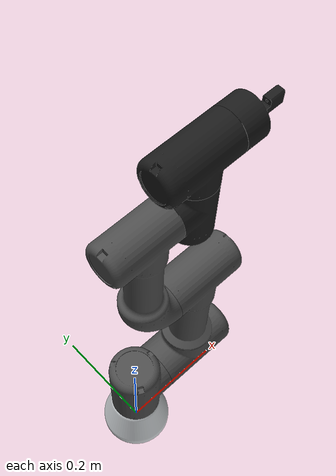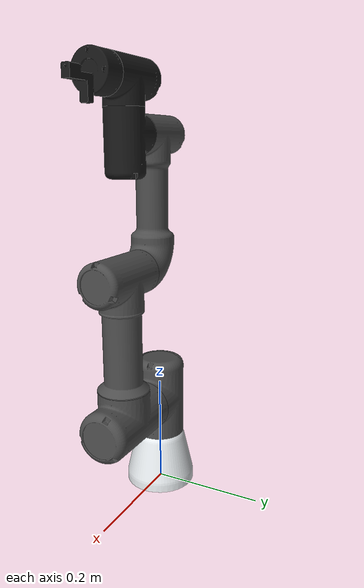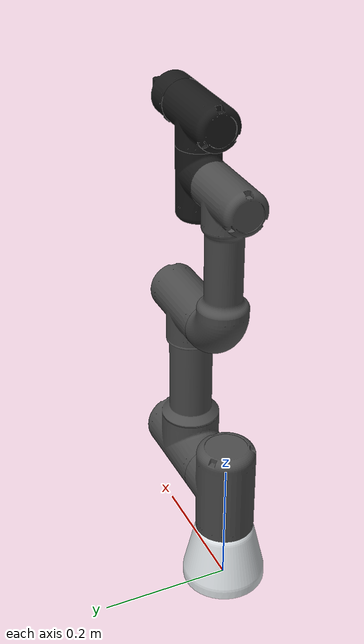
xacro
<?xml version="1.0"?>
<robot xmlns:xacro="http://www.ros.org/wiki/xacro" name="car_spraying_robot">
    <xacro:arg name="initial_positions_file" default="initial_positions.yaml" />

    <!-- Import car_spraying_robot urdf file -->
    <xacro:include filename="$(find car_spraying_robot)/urdf/UR3_Assembly_URDF.urdf" />

    <!-- Import control_xacro -->
    <xacro:include filename="car_spraying_robot.ros2_control.xacro" />

    <xacro:car_spraying_robot_ros2_control name="FakeSystem" initial_positions_file="$(arg initial_positions_file)"/>

</robot>

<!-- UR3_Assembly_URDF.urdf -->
<robot
  name="car_spraying_robot">
  <link name="world"/>

  <joint name="world_joint" type="fixed">
    <parent link="world"/>
    <child link="base_link"/>
    <origin xyz="0 0 0" rpy="0 0 0"/>
  </joint>

  <link
    name="base_link">
    <inertial>
      <origin
        xyz="0 -4.44089209850063E-16 0.0475762493981301"
        rpy="0 0 0" />
      <mass
        value="2.65145043916468" />
      <inertia
        ixx="0.00437179269564763"
        ixy="-3.85185988877447E-34"
        ixz="-5.87786191511011E-23"
        iyy="0.00437179269564763"
        iyz="3.85148667524642E-19"
        izz="0.00438480872973141" />
    </inertial>
    <visual>
      <origin
        xyz="0 0 0"
        rpy="0 0 0" />
      <geometry>
        <mesh
          filename="package://car_spraying_robot/meshes/base_link.stl" />
      </geometry>
      <material
        name="">
        <color
          rgba="0.898039215686275 0.917647058823529 0.929411764705882 1" />
      </material>
    </visual>
    <collision>
      <origin
        xyz="0 0 0"
        rpy="0 0 0" />
      <geometry>
        <mesh
          filename="package://car_spraying_robot/meshes/base_link.stl" />
      </geometry>
    </collision>
  </link>
  <link
    name="link_1">
    <inertial>
      <origin
        xyz="0.00511358621544344 -4.48936976482628E-09 0.063179880887965"
        rpy="0 0 0" />
      <mass
        value="0.805998552978852" />
      <inertia
        ixx="0.00132065479666303"
        ixy="4.40619620491933E-10"
        ixz="-1.7219218437348E-05"
        iyy="0.00142111571223347"
        iyz="1.29400431944431E-10"
        izz="0.000966507308305541" />
    </inertial>
    <visual>
      <origin
        xyz="0 0 0"
        rpy="0 0 0" />
      <geometry>
        <mesh
          filename="package://car_spraying_robot/meshes/link_1.stl" />
      </geometry>
      <material
        name="">
        <color
          rgba="0.298039215686275 0.298039215686275 0.298039215686275 1" />
      </material>
    </visual>
    <collision>
      <origin
        xyz="0 0 0"
        rpy="0 0 0" />
      <geometry>
        <mesh
          filename="package://car_spraying_robot/meshes/link_1.stl" />
      </geometry>
    </collision>
  </link>
  <joint
    name="joint_0"
    type="revolute">
    <origin
      xyz="0 0 0.1058"
      rpy="0 0 0" />
    <parent
      link="base_link" />
    <child
      link="link_1" />
    <axis
      xyz="0 0 1" />
    <limit
      lower="-3.14"
      upper="3.14"
      effort="35.0"
      velocity="1.5" />
  </joint>
  <link
    name="link_2">
    <inertial>
      <origin
        xyz="4.25462332032112E-10 0.112619000509759 -0.0693119808542058"
        rpy="0 0 0" />
      <mass
        value="2.84556640407507" />
      <inertia
        ixx="0.0058537691504216"
        ixy="6.57818481496509E-10"
        ixz="-6.76159344004634E-11"
        iyy="0.00295686823260974"
        iyz="2.19320959807221E-05"
        izz="0.00509129838811714" />
    </inertial>
    <visual>
      <origin
        xyz="0 0 0"
        rpy="0 0 0" />
      <geometry>
        <mesh
          filename="package://car_spraying_robot/meshes/link_2.stl" />
      </geometry>
      <material
        name="">
        <color
          rgba="0.298039215686275 0.298039215686275 0.298039215686275 1" />
      </material>
    </visual>
    <collision>
      <origin
        xyz="0 0 0"
        rpy="0 0 0" />
      <geometry>
        <mesh
          filename="package://car_spraying_robot/meshes/link_2.stl" />
      </geometry>
    </collision>
  </link>
  <joint
    name="joint_1"
    type="revolute">
    <origin
      xyz="0.0550000000000006 0 0.0659999999999999"
      rpy="1.5707963267949 0 -1.5707963267949" />
    <parent
      link="link_1" />
    <child
      link="link_2" />
    <axis
      xyz="0 0 1" />
    <limit
      lower="-3.14"
      upper="3.14"
      effort="35.0"
      velocity="1.5" />
  </joint>
  <link
    name="link_3">
    <inertial>
      <origin
        xyz="0.115582187515874 3.75973963073761E-09 0.0478777808983519"
        rpy="0 0 0" />
      <mass
        value="1.5490639003481" />
      <inertia
        ixx="0.000906399541692758"
        ixy="5.94648013847451E-10"
        ixz="-5.89431715410645E-05"
        iyy="0.00231873788314177"
        iyz="1.83603569826544E-11"
        izz="0.002197605373301" />
    </inertial>
    <visual>
      <origin
        xyz="0 0 0"
        rpy="0 0 0" />
      <geometry>
        <mesh
          filename="package://car_spraying_robot/meshes/link_3.stl" />
      </geometry>
      <material
        name="">
        <color
          rgba="0.298039215686275 0.298039215686275 0.298039215686275 1" />
      </material>
    </visual>
    <collision>
      <origin
        xyz="0 0 0"
        rpy="0 0 0" />
      <geometry>
        <mesh
          filename="package://car_spraying_robot/meshes/link_3.stl" />
      </geometry>
    </collision>
  </link>
  <joint
    name="joint_2"
    type="revolute">
    <origin
      xyz="0 0.255 -0.0159999999999996"
      rpy="0 0 1.5707963267949" />
    <parent
      link="link_2" />
    <child
      link="link_3" />
    <axis
      xyz="0 0 1" />
    <limit
      lower="-3.14"
      upper="3.14"
      effort="10.0"
      velocity="2.0" />
  </joint>
  <link
    name="link_4">
    <inertial>
      <origin
        xyz="-0.00250614919525627 1.99867766781381E-09 0.0361958839037326"
        rpy="0 0 0" />
      <mass
        value="0.305924122484251" />
      <inertia
        ixx="0.000192561803762394"
        ixy="2.03197911773492E-11"
        ixz="1.28656207934014E-06"
        iyy="0.000281930007107716"
        iyz="6.74791302758906E-11"
        izz="0.000261214129591347" />
    </inertial>
    <visual>
      <origin
        xyz="0 0 0"
        rpy="0 0 0" />
      <geometry>
        <mesh
          filename="package://car_spraying_robot/meshes/link_4.stl" />
      </geometry>
      <material
        name="">
        <color
          rgba="0.101960784313725 0.101960784313725 0.101960784313725 1" />
      </material>
    </visual>
    <collision>
      <origin
        xyz="0 0 0"
        rpy="0 0 0" />
      <geometry>
        <mesh
          filename="package://car_spraying_robot/meshes/link_4.stl" />
      </geometry>
    </collision>
  </link>
  <joint
    name="joint_3"
    type="revolute">
    <origin
      xyz="0.2245 0 0.00700000000000012"
      rpy="-3.14159265358979 0 0" />
    <parent
      link="link_3" />
    <child
      link="link_4" />
    <axis
      xyz="0 0 1" />
    <limit
      lower="-3.14"
      upper="3.14"
      effort="10.0"
      velocity="2.0" />
  </joint>
  <link
    name="link_5">
    <inertial>
      <origin
        xyz="-3.05390690513718E-09 0.00190124611504094 0.0365748109896381"
        rpy="0 0 0" />
      <mass
        value="0.335457056920106" />
      <inertia
        ixx="0.000353929483232228"
        ixy="-2.6343744776887E-11"
        ixz="-9.17112572782522E-11"
        iyy="0.000208608865865198"
        iyz="-4.05767367042031E-06"
        izz="0.000332763624687152" />
    </inertial>
    <visual>
      <origin
        xyz="0 0 0"
        rpy="0 0 0" />
      <geometry>
        <mesh
          filename="package://car_spraying_robot/meshes/link_5.stl" />
      </geometry>
      <material
        name="">
        <color
          rgba="0.101960784313725 0.101960784313725 0.101960784313725 1" />
      </material>
    </visual>
    <collision>
      <origin
        xyz="0 0 0"
        rpy="0 0 0" />
      <geometry>
        <mesh
          filename="package://car_spraying_robot/meshes/link_5.stl" />
      </geometry>
    </collision>
  </link>
  <joint
    name="joint_4"
    type="revolute">
    <origin
      xyz="0.043 0 0.0405000000000002"
      rpy="1.5707963267949 0 1.5707963267949" />
    <parent
      link="link_4" />
    <child
      link="link_5" />
    <axis
      xyz="0 0 1" />
    <limit
      lower="-3.14"
      upper="3.14"
      effort="10.0"
      velocity="2.0" />
  </joint>
  <link
    name="link_6">
    <inertial>
      <origin
        xyz="-3.10862446895044E-15 0.000719085206381309 0.0190838617713358"
        rpy="0 0 0" />
      <mass
        value="0.320196673344857" />
      <inertia
        ixx="0.00011646073524573"
        ixy="3.244441283633E-20"
        ixz="-5.9770531959501E-20"
        iyy="0.000114323636606439"
        iyz="2.12683072758443E-06"
        izz="0.000164254132094859" />
    </inertial>
    <visual>
      <origin
        xyz="0 0 0"
        rpy="0 0 0" />
      <geometry>
        <mesh
          filename="package://car_spraying_robot/meshes/link_6.stl" />
      </geometry>
      <material
        name="">
        <color
          rgba="0.101960784313725 0.101960784313725 0.101960784313725 1" />
      </material>
    </visual>
    <collision>
      <origin
        xyz="0 0 0"
        rpy="0 0 0" />
      <geometry>
        <mesh
          filename="package://car_spraying_robot/meshes/link_6.stl" />
      </geometry>
    </collision>
  </link>
  <joint
    name="joint_5"
    type="revolute">
    <origin
      xyz="0 0.0530000000000008 0.0404999999999998"
      rpy="-1.5707963267949 0 0" />
    <parent
      link="link_5" />
    <child
      link="link_6" />
    <axis
      xyz="0 0 -1" />
    <limit
      lower="-3.14"
      upper="3.14"
      effort="10.0"
      velocity="2.0" />
  </joint>

  <ros2_control name="GazeboSystem" type="system">
    <hardware>
      <plugin>gz_ros2_control/GazeboSimSystem</plugin>
    </hardware>
    <joint name="joint_0">
      <command_interface name="position" />
      <state_interface name="position" />
      <state_interface name="velocity" />
    </joint>
    <joint name="joint_1">
      <command_interface name="position" />
      <state_interface name="position" />
      <state_interface name="velocity" />
    </joint>
    <joint name="joint_2">
      <command_interface name="position" />
      <state_interface name="position" />
      <state_interface name="velocity" />
    </joint>
    <joint name="joint_3">
      <command_interface name="position" />
      <state_interface name="position" />
      <state_interface name="velocity" />
    </joint>
    <joint name="joint_4">
      <command_interface name="position" />
      <state_interface name="position" />
      <state_interface name="velocity" />
    </joint>
    <joint name="joint_5">
      <command_interface name="position" />
      <state_interface name="position" />
      <state_interface name="velocity" />
    </joint>
  </ros2_control>
</robot>
